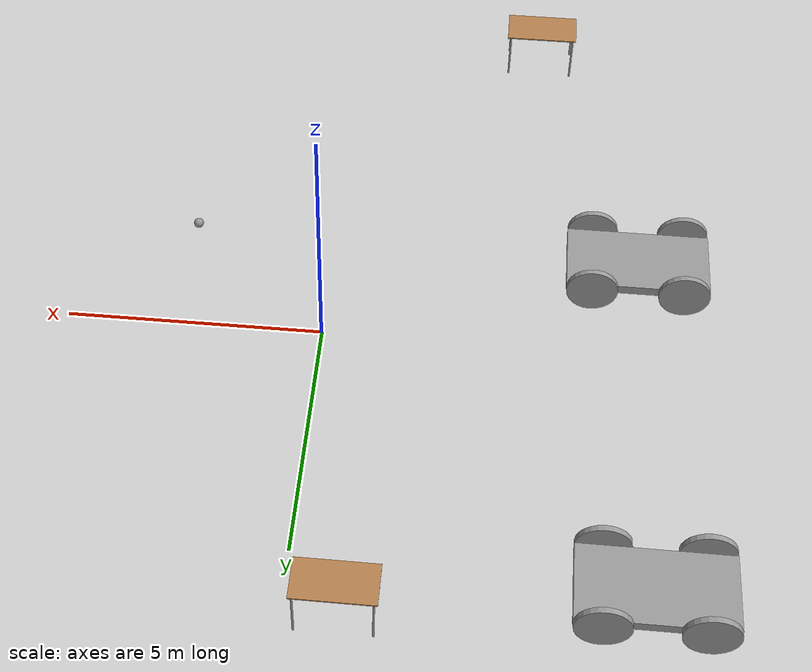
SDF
<sdf version="1.6">
 <world name="default">
  <model name="ground_plane">
   <static>1</static>
   <link name="link">
    <collision name="collision">
     <geometry><plane><normal>0 0 1</normal><size>100 100</size></plane></geometry>
     <surface><friction><ode><mu>100</mu><mu2>50</mu2></ode></friction></surface>
    </collision>
    <visual name="visual">
     <cast_shadows>0</cast_shadows>
     <geometry><plane><normal>0 0 1</normal><size>100 100</size></plane></geometry>
     <material>
      <script><uri>file://media/materials/scripts/gazebo.material</uri><name>Gazebo/Grey</name></script>
     </material>
    </visual>
   </link>
  </model>
  <model name="table">
   <static>1</static>
   <link name="link">
    <collision name="surface">
     <pose>0 0 1 0 -0 0</pose>
     <geometry><box><size>1.5 0.8 0.03</size></box></geometry>
     <surface><friction><ode><mu>0.6</mu><mu2>0.6</mu2></ode></friction></surface>
    </collision>
    <visual name="visual1">
     <pose>0 0 1 0 -0 0</pose>
     <geometry><box><size>1.5 0.8 0.03</size></box></geometry>
     <material>
      <script><uri>file://media/materials/scripts/gazebo.material</uri><name>Gazebo/Wood</name></script>
     </material>
    </visual>
    <collision name="front_left_leg">
     <pose>0.68 0.38 0.5 0 -0 0</pose>
     <geometry><cylinder><radius>0.02</radius><length>1</length></cylinder></geometry>
    </collision>
    <visual name="front_left_leg">
     <pose>0.68 0.38 0.5 0 -0 0</pose>
     <geometry><cylinder><radius>0.02</radius><length>1</length></cylinder></geometry>
     <material>
      <script><uri>file://media/materials/scripts/gazebo.material</uri><name>Gazebo/Grey</name></script>
     </material>
    </visual>
    <collision name="front_right_leg">
     <pose>0.68 -0.38 0.5 0 -0 0</pose>
     <geometry><cylinder><radius>0.02</radius><length>1</length></cylinder></geometry>
    </collision>
    <visual name="front_right_leg">
     <pose>0.68 -0.38 0.5 0 -0 0</pose>
     <geometry><cylinder><radius>0.02</radius><length>1</length></cylinder></geometry>
     <material>
      <script><uri>file://media/materials/scripts/gazebo.material</uri><name>Gazebo/Grey</name></script>
     </material>
    </visual>
    <collision name="back_right_leg">
     <pose>-0.68 -0.38 0.5 0 -0 0</pose>
     <geometry><cylinder><radius>0.02</radius><length>1</length></cylinder></geometry>
    </collision>
    <visual name="back_right_leg">
     <pose>-0.68 -0.38 0.5 0 -0 0</pose>
     <geometry><cylinder><radius>0.02</radius><length>1</length></cylinder></geometry>
     <material>
      <script><uri>file://media/materials/scripts/gazebo.material</uri><name>Gazebo/Grey</name></script>
     </material>
    </visual>
    <collision name="back_left_leg">
     <pose>-0.68 0.38 0.5 0 -0 0</pose>
     <geometry><cylinder><radius>0.02</radius><length>1</length></cylinder></geometry>
    </collision>
    <visual name="back_left_leg">
     <pose>-0.68 0.38 0.5 0 -0 0</pose>
     <geometry><cylinder><radius>0.02</radius><length>1</length></cylinder></geometry>
     <material>
      <script><uri>file://media/materials/scripts/gazebo.material</uri><name>Gazebo/Grey</name></script>
     </material>
    </visual>
   </link>
   <pose>-0.947765 6.15557 0 0 -0 0</pose>
  </model>
  <model name="table_2">
   <static>1</static>
   <link name="link">
    <collision name="surface">
     <pose>0 0 1 0 -0 0</pose>
     <geometry><box><size>1.5 0.8 0.03</size></box></geometry>
     <surface><friction><ode><mu>0.6</mu><mu2>0.6</mu2></ode></friction></surface>
    </collision>
    <visual name="visual1">
     <pose>0 0 1 0 -0 0</pose>
     <geometry><box><size>1.5 0.8 0.03</size></box></geometry>
     <material>
      <script><uri>file://media/materials/scripts/gazebo.material</uri><name>Gazebo/Wood</name></script>
     </material>
    </visual>
    <collision name="front_left_leg">
     <pose>0.68 0.38 0.5 0 -0 0</pose>
     <geometry><cylinder><radius>0.02</radius><length>1</length></cylinder></geometry>
    </collision>
    <visual name="front_left_leg">
     <pose>0.68 0.38 0.5 0 -0 0</pose>
     <geometry><cylinder><radius>0.02</radius><length>1</length></cylinder></geometry>
     <material>
      <script><uri>file://media/materials/scripts/gazebo.material</uri><name>Gazebo/Grey</name></script>
     </material>
    </visual>
    <collision name="front_right_leg">
     <pose>0.68 -0.38 0.5 0 -0 0</pose>
     <geometry><cylinder><radius>0.02</radius><length>1</length></cylinder></geometry>
    </collision>
    <visual name="front_right_leg">
     <pose>0.68 -0.38 0.5 0 -0 0</pose>
     <geometry><cylinder><radius>0.02</radius><length>1</length></cylinder></geometry>
     <material>
      <script><uri>file://media/materials/scripts/gazebo.material</uri><name>Gazebo/Grey</name></script>
     </material>
    </visual>
    <collision name="back_right_leg">
     <pose>-0.68 -0.38 0.5 0 -0 0</pose>
     <geometry><cylinder><radius>0.02</radius><length>1</length></cylinder></geometry>
    </collision>
    <visual name="back_right_leg">
     <pose>-0.68 -0.38 0.5 0 -0 0</pose>
     <geometry><cylinder><radius>0.02</radius><length>1</length></cylinder></geometry>
     <material>
      <script><uri>file://media/materials/scripts/gazebo.material</uri><name>Gazebo/Grey</name></script>
     </material>
    </visual>
    <collision name="back_left_leg">
     <pose>-0.68 0.38 0.5 0 -0 0</pose>
     <geometry><cylinder><radius>0.02</radius><length>1</length></cylinder></geometry>
    </collision>
    <visual name="back_left_leg">
     <pose>-0.68 0.38 0.5 0 -0 0</pose>
     <geometry><cylinder><radius>0.02</radius><length>1</length></cylinder></geometry>
     <material>
      <script><uri>file://media/materials/scripts/gazebo.material</uri><name>Gazebo/Grey</name></script>
     </material>
    </visual>
   </link>
   <pose>-3.98995 -8.47046 0 0 -0 0</pose>
  </model>
  <model name="robot">
   <link name="link_0">
    <pose>-1e-06 -2e-06 -0.017894 0 -0 0</pose>
    <inertial>
     <mass>0.791661</mass>
     <inertia>
      <ixx>0.14552</ixx>
      <ixy>0</ixy>
      <ixz>0</ixz>
      <iyy>0.516326</iyy>
      <iyz>0</iyz>
      <izz>0.656947</izz>
     </inertia>
    </inertial>
    <visual name="visual">
     <geometry><box><size>2.79094 1.47264 0.192699</size></box></geometry>
     <material>
      <lighting>1</lighting>
      <script><uri>file://media/materials/scripts/gazebo.material</uri><name>Gazebo/Grey</name></script>
      <shader type="pixel"/>
      <ambient>0.3 0.3 0.3 1</ambient>
      <diffuse>0.7 0.7 0.7 1</diffuse>
      <specular>0.01 0.01 0.01 1</specular>
      <emissive>0 0 0 1</emissive>
     </material>
    </visual>
    <collision name="collision">
     <geometry><box><size>2.79094 1.47264 0.192699</size></box></geometry>
     <surface>
      <friction>
       <ode><mu>1</mu><mu2>1</mu2><fdir1>0 0 0</fdir1><slip1>0</slip1><slip2>0</slip2></ode>
       <torsional>
        <coefficient>1</coefficient>
        <patch_radius>0</patch_radius>
        <surface_radius>0</surface_radius>
        <use_patch_radius>1</use_patch_radius>
        <ode><slip>0</slip></ode>
       </torsional>
      </friction>
      <bounce><restitution_coefficient>0</restitution_coefficient><threshold>1e+06</threshold></bounce>
      <contact>
       <collide_without_contact>0</collide_without_contact>
       <collide_without_contact_bitmask>1</collide_without_contact_bitmask>
       <collide_bitmask>1</collide_bitmask>
       <ode>
        <soft_cfm>0</soft_cfm>
        <soft_erp>0.2</soft_erp>
        <kp>1e+13</kp>
        <kd>1</kd>
        <max_vel>0.01</max_vel>
        <min_depth>0</min_depth>
       </ode>
       <bullet>
        <split_impulse>1</split_impulse>
        <split_impulse_penetration_threshold>-0.01</split_impulse_penetration_threshold>
        <soft_cfm>0</soft_cfm>
        <soft_erp>0.2</soft_erp>
        <kp>1e+13</kp>
        <kd>1</kd>
       </bullet>
      </contact>
     </surface>
    </collision>
   </link>
   <link name="link_1">
    <pose>0.895468 -0.796371 0.004474 1.58338 -0 0</pose>
    <inertial>
     <mass>0.107521</mass>
     <inertia>
      <ixx>0.00682364</ixx>
      <ixy>0</ixy>
      <ixz>0</ixz>
      <iyy>0.00682364</iyy>
      <iyz>0</iyz>
      <izz>0.0134401</izz>
     </inertia>
    </inertial>
    <visual name="visual">
     <geometry><cylinder><radius>0.5</radius><length>0.107521</length></cylinder></geometry>
     <material>
      <lighting>1</lighting>
      <script><uri>file://media/materials/scripts/gazebo.material</uri><name>Gazebo/Grey</name></script>
      <shader type="pixel"><normal_map>__default__</normal_map></shader>
      <ambient>0.3 0.3 0.3 1</ambient>
      <diffuse>0.7 0.7 0.7 1</diffuse>
      <specular>0.01 0.01 0.01 1</specular>
      <emissive>0 0 0 1</emissive>
     </material>
    </visual>
    <collision name="collision">
     <geometry><cylinder><radius>0.5</radius><length>0.107521</length></cylinder></geometry>
     <surface>
      <friction>
       <ode><mu>1</mu><mu2>1</mu2><fdir1>0 0 0</fdir1><slip1>0</slip1><slip2>0</slip2></ode>
       <torsional>
        <coefficient>1</coefficient>
        <patch_radius>0</patch_radius>
        <surface_radius>0</surface_radius>
        <use_patch_radius>1</use_patch_radius>
        <ode><slip>0</slip></ode>
       </torsional>
      </friction>
      <bounce><restitution_coefficient>0</restitution_coefficient><threshold>1e+06</threshold></bounce>
      <contact>
       <collide_without_contact>0</collide_without_contact>
       <collide_without_contact_bitmask>1</collide_without_contact_bitmask>
       <collide_bitmask>1</collide_bitmask>
       <ode>
        <soft_cfm>0</soft_cfm>
        <soft_erp>0.2</soft_erp>
        <kp>1e+13</kp>
        <kd>1</kd>
        <max_vel>0.01</max_vel>
        <min_depth>0</min_depth>
       </ode>
       <bullet>
        <split_impulse>1</split_impulse>
        <split_impulse_penetration_threshold>-0.01</split_impulse_penetration_threshold>
        <soft_cfm>0</soft_cfm>
        <soft_erp>0.2</soft_erp>
        <kp>1e+13</kp>
        <kd>1</kd>
       </bullet>
      </contact>
     </surface>
    </collision>
   </link>
   <link name="link_1_clone">
    <pose>0.895468 0.796367 0.004474 1.58338 -0 0</pose>
    <inertial>
     <mass>0.107521</mass>
     <inertia>
      <ixx>0.00682364</ixx>
      <ixy>0</ixy>
      <ixz>0</ixz>
      <iyy>0.00682364</iyy>
      <iyz>0</iyz>
      <izz>0.0134401</izz>
     </inertia>
    </inertial>
    <visual name="visual">
     <geometry><cylinder><radius>0.5</radius><length>0.107521</length></cylinder></geometry>
     <material>
      <lighting>1</lighting>
      <script><uri>file://media/materials/scripts/gazebo.material</uri><name>Gazebo/Grey</name></script>
      <shader type="pixel"><normal_map>__default__</normal_map></shader>
      <ambient>0.3 0.3 0.3 1</ambient>
      <diffuse>0.7 0.7 0.7 1</diffuse>
      <specular>0.01 0.01 0.01 1</specular>
      <emissive>0 0 0 1</emissive>
     </material>
    </visual>
    <collision name="collision">
     <geometry><cylinder><radius>0.5</radius><length>0.107521</length></cylinder></geometry>
     <surface>
      <friction>
       <ode><mu>1</mu><mu2>1</mu2><fdir1>0 0 0</fdir1><slip1>0</slip1><slip2>0</slip2></ode>
       <torsional>
        <coefficient>1</coefficient>
        <patch_radius>0</patch_radius>
        <surface_radius>0</surface_radius>
        <use_patch_radius>1</use_patch_radius>
        <ode><slip>0</slip></ode>
       </torsional>
      </friction>
      <bounce><restitution_coefficient>0</restitution_coefficient><threshold>1e+06</threshold></bounce>
      <contact>
       <collide_without_contact>0</collide_without_contact>
       <collide_without_contact_bitmask>1</collide_without_contact_bitmask>
       <collide_bitmask>1</collide_bitmask>
       <ode>
        <soft_cfm>0</soft_cfm>
        <soft_erp>0.2</soft_erp>
        <kp>1e+13</kp>
        <kd>1</kd>
        <max_vel>0.01</max_vel>
        <min_depth>0</min_depth>
       </ode>
       <bullet>
        <split_impulse>1</split_impulse>
        <split_impulse_penetration_threshold>-0.01</split_impulse_penetration_threshold>
        <soft_cfm>0</soft_cfm>
        <soft_erp>0.2</soft_erp>
        <kp>1e+13</kp>
        <kd>1</kd>
       </bullet>
      </contact>
     </surface>
    </collision>
   </link>
   <link name="link_1_clone_clone">
    <pose>-0.895471 -0.796371 0.004474 1.58338 -0 0</pose>
    <inertial>
     <mass>0.107521</mass>
     <inertia>
      <ixx>0.00682364</ixx>
      <ixy>0</ixy>
      <ixz>0</ixz>
      <iyy>0.00682364</iyy>
      <iyz>0</iyz>
      <izz>0.0134401</izz>
     </inertia>
    </inertial>
    <visual name="visual">
     <geometry><cylinder><radius>0.5</radius><length>0.107521</length></cylinder></geometry>
     <material>
      <lighting>1</lighting>
      <script><uri>file://media/materials/scripts/gazebo.material</uri><name>Gazebo/Grey</name></script>
      <shader type="pixel"><normal_map>__default__</normal_map></shader>
      <ambient>0.3 0.3 0.3 1</ambient>
      <diffuse>0.7 0.7 0.7 1</diffuse>
      <specular>0.01 0.01 0.01 1</specular>
      <emissive>0 0 0 1</emissive>
     </material>
    </visual>
    <collision name="collision">
     <geometry><cylinder><radius>0.5</radius><length>0.107521</length></cylinder></geometry>
     <surface>
      <friction>
       <ode><mu>1</mu><mu2>1</mu2><fdir1>0 0 0</fdir1><slip1>0</slip1><slip2>0</slip2></ode>
       <torsional>
        <coefficient>1</coefficient>
        <patch_radius>0</patch_radius>
        <surface_radius>0</surface_radius>
        <use_patch_radius>1</use_patch_radius>
        <ode><slip>0</slip></ode>
       </torsional>
      </friction>
      <bounce><restitution_coefficient>0</restitution_coefficient><threshold>1e+06</threshold></bounce>
      <contact>
       <collide_without_contact>0</collide_without_contact>
       <collide_without_contact_bitmask>1</collide_without_contact_bitmask>
       <collide_bitmask>1</collide_bitmask>
       <ode>
        <soft_cfm>0</soft_cfm>
        <soft_erp>0.2</soft_erp>
        <kp>1e+13</kp>
        <kd>1</kd>
        <max_vel>0.01</max_vel>
        <min_depth>0</min_depth>
       </ode>
       <bullet>
        <split_impulse>1</split_impulse>
        <split_impulse_penetration_threshold>-0.01</split_impulse_penetration_threshold>
        <soft_cfm>0</soft_cfm>
        <soft_erp>0.2</soft_erp>
        <kp>1e+13</kp>
        <kd>1</kd>
       </bullet>
      </contact>
     </surface>
    </collision>
   </link>
   <link name="link_1_clone_clone_clone">
    <pose>-0.895471 0.796367 0.004474 1.58338 -0 0</pose>
    <inertial>
     <mass>0.107521</mass>
     <inertia>
      <ixx>0.00682364</ixx>
      <ixy>0</ixy>
      <ixz>0</ixz>
      <iyy>0.00682364</iyy>
      <iyz>0</iyz>
      <izz>0.0134401</izz>
     </inertia>
    </inertial>
    <visual name="visual">
     <geometry><cylinder><radius>0.5</radius><length>0.107521</length></cylinder></geometry>
     <material>
      <lighting>1</lighting>
      <script><uri>file://media/materials/scripts/gazebo.material</uri><name>Gazebo/Grey</name></script>
      <shader type="pixel"><normal_map>__default__</normal_map></shader>
      <ambient>0.3 0.3 0.3 1</ambient>
      <diffuse>0.7 0.7 0.7 1</diffuse>
      <specular>0.01 0.01 0.01 1</specular>
      <emissive>0 0 0 1</emissive>
     </material>
    </visual>
    <collision name="collision">
     <geometry><cylinder><radius>0.5</radius><length>0.107521</length></cylinder></geometry>
     <surface>
      <friction>
       <ode><mu>1</mu><mu2>1</mu2><fdir1>0 0 0</fdir1><slip1>0</slip1><slip2>0</slip2></ode>
       <torsional>
        <coefficient>1</coefficient>
        <patch_radius>0</patch_radius>
        <surface_radius>0</surface_radius>
        <use_patch_radius>1</use_patch_radius>
        <ode><slip>0</slip></ode>
       </torsional>
      </friction>
      <bounce><restitution_coefficient>0</restitution_coefficient><threshold>1e+06</threshold></bounce>
      <contact>
       <collide_without_contact>0</collide_without_contact>
       <collide_without_contact_bitmask>1</collide_without_contact_bitmask>
       <collide_bitmask>1</collide_bitmask>
       <ode>
        <soft_cfm>0</soft_cfm>
        <soft_erp>0.2</soft_erp>
        <kp>1e+13</kp>
        <kd>1</kd>
        <max_vel>0.01</max_vel>
        <min_depth>0</min_depth>
       </ode>
       <bullet>
        <split_impulse>1</split_impulse>
        <split_impulse_penetration_threshold>-0.01</split_impulse_penetration_threshold>
        <soft_cfm>0</soft_cfm>
        <soft_erp>0.2</soft_erp>
        <kp>1e+13</kp>
        <kd>1</kd>
       </bullet>
      </contact>
     </surface>
    </collision>
   </link>
   <joint name="link_0_JOINT_0" type="revolute">
    <parent>link_0</parent>
    <child>link_1</child>
    <axis>
     <xyz>1 0 0</xyz>
     <use_parent_model_frame>0</use_parent_model_frame>
     <limit>
      <lower>-1.79769e+308</lower>
      <upper>1.79769e+308</upper>
      <effort>-1</effort>
      <velocity>-1</velocity>
     </limit>
     <dynamics>
      <spring_reference>0</spring_reference>
      <spring_stiffness>0</spring_stiffness>
      <damping>0</damping>
     </dynamics>
    </axis>
    <physics>
     <ode><limit><cfm>0</cfm><erp>0.2</erp></limit><suspension><cfm>0</cfm><erp>0.2</erp></suspension></ode>
    </physics>
   </joint>
   <joint name="link_0_JOINT_1" type="revolute">
    <parent>link_0</parent>
    <child>link_1_clone</child>
    <axis>
     <xyz>1 0 0</xyz>
     <use_parent_model_frame>0</use_parent_model_frame>
     <limit>
      <lower>-1.79769e+308</lower>
      <upper>1.79769e+308</upper>
      <effort>-1</effort>
      <velocity>-1</velocity>
     </limit>
     <dynamics>
      <spring_reference>0</spring_reference>
      <spring_stiffness>0</spring_stiffness>
      <damping>0</damping>
     </dynamics>
    </axis>
    <physics>
     <ode><limit><cfm>0</cfm><erp>0.2</erp></limit><suspension><cfm>0</cfm><erp>0.2</erp></suspension></ode>
    </physics>
   </joint>
   <joint name="link_0_JOINT_2" type="revolute">
    <parent>link_0</parent>
    <child>link_1_clone_clone</child>
    <axis>
     <xyz>1 0 0</xyz>
     <use_parent_model_frame>0</use_parent_model_frame>
     <limit>
      <lower>-1.79769e+308</lower>
      <upper>1.79769e+308</upper>
      <effort>-1</effort>
      <velocity>-1</velocity>
     </limit>
     <dynamics>
      <spring_reference>0</spring_reference>
      <spring_stiffness>0</spring_stiffness>
      <damping>0</damping>
     </dynamics>
    </axis>
    <physics>
     <ode><limit><cfm>0</cfm><erp>0.2</erp></limit><suspension><cfm>0</cfm><erp>0.2</erp></suspension></ode>
    </physics>
   </joint>
   <joint name="link_0_JOINT_3" type="revolute">
    <parent>link_0</parent>
    <child>link_1_clone_clone_clone</child>
    <axis>
     <xyz>1 0 0</xyz>
     <use_parent_model_frame>0</use_parent_model_frame>
     <limit>
      <lower>-1.79769e+308</lower>
      <upper>1.79769e+308</upper>
      <effort>-1</effort>
      <velocity>-1</velocity>
     </limit>
     <dynamics>
      <spring_reference>0</spring_reference>
      <spring_stiffness>0</spring_stiffness>
      <damping>0</damping>
     </dynamics>
    </axis>
    <physics>
     <ode><limit><cfm>0</cfm><erp>0.2</erp></limit><suspension><cfm>0</cfm><erp>0.2</erp></suspension></ode>
    </physics>
   </joint>
   <static>0</static>
   <pose>-6.30392 5.46853 0.495524 -0 -2e-06 3.3e-05</pose>
  </model>
  <model name="robot_0">
   <link name="link_0">
    <pose>-1e-06 -2e-06 -0.017894 0 -0 0</pose>
    <inertial>
     <mass>0.791661</mass>
     <inertia>
      <ixx>0.14552</ixx>
      <ixy>0</ixy>
      <ixz>0</ixz>
      <iyy>0.516326</iyy>
      <iyz>0</iyz>
      <izz>0.656947</izz>
     </inertia>
    </inertial>
    <visual name="visual">
     <geometry><box><size>2.79094 1.47264 0.192699</size></box></geometry>
     <material>
      <lighting>1</lighting>
      <script><uri>file://media/materials/scripts/gazebo.material</uri><name>Gazebo/Grey</name></script>
      <shader type="pixel"/>
      <ambient>0.3 0.3 0.3 1</ambient>
      <diffuse>0.7 0.7 0.7 1</diffuse>
      <specular>0.01 0.01 0.01 1</specular>
      <emissive>0 0 0 1</emissive>
     </material>
    </visual>
    <collision name="collision">
     <geometry><box><size>2.79094 1.47264 0.192699</size></box></geometry>
     <surface>
      <friction>
       <ode><mu>1</mu><mu2>1</mu2><fdir1>0 0 0</fdir1><slip1>0</slip1><slip2>0</slip2></ode>
       <torsional>
        <coefficient>1</coefficient>
        <patch_radius>0</patch_radius>
        <surface_radius>0</surface_radius>
        <use_patch_radius>1</use_patch_radius>
        <ode><slip>0</slip></ode>
       </torsional>
      </friction>
      <bounce><restitution_coefficient>0</restitution_coefficient><threshold>1e+06</threshold></bounce>
      <contact>
       <collide_without_contact>0</collide_without_contact>
       <collide_without_contact_bitmask>1</collide_without_contact_bitmask>
       <collide_bitmask>1</collide_bitmask>
       <ode>
        <soft_cfm>0</soft_cfm>
        <soft_erp>0.2</soft_erp>
        <kp>1e+13</kp>
        <kd>1</kd>
        <max_vel>0.01</max_vel>
        <min_depth>0</min_depth>
       </ode>
       <bullet>
        <split_impulse>1</split_impulse>
        <split_impulse_penetration_threshold>-0.01</split_impulse_penetration_threshold>
        <soft_cfm>0</soft_cfm>
        <soft_erp>0.2</soft_erp>
        <kp>1e+13</kp>
        <kd>1</kd>
       </bullet>
      </contact>
     </surface>
    </collision>
   </link>
   <link name="link_1">
    <pose>0.895468 -0.796371 0.004474 1.58338 -0 0</pose>
    <inertial>
     <mass>0.107521</mass>
     <inertia>
      <ixx>0.00682364</ixx>
      <ixy>0</ixy>
      <ixz>0</ixz>
      <iyy>0.00682364</iyy>
      <iyz>0</iyz>
      <izz>0.0134401</izz>
     </inertia>
    </inertial>
    <visual name="visual">
     <geometry><cylinder><radius>0.5</radius><length>0.107521</length></cylinder></geometry>
     <material>
      <lighting>1</lighting>
      <script><uri>file://media/materials/scripts/gazebo.material</uri><name>Gazebo/Grey</name></script>
      <shader type="pixel"><normal_map>__default__</normal_map></shader>
      <ambient>0.3 0.3 0.3 1</ambient>
      <diffuse>0.7 0.7 0.7 1</diffuse>
      <specular>0.01 0.01 0.01 1</specular>
      <emissive>0 0 0 1</emissive>
     </material>
    </visual>
    <collision name="collision">
     <geometry><cylinder><radius>0.5</radius><length>0.107521</length></cylinder></geometry>
     <surface>
      <friction>
       <ode><mu>1</mu><mu2>1</mu2><fdir1>0 0 0</fdir1><slip1>0</slip1><slip2>0</slip2></ode>
       <torsional>
        <coefficient>1</coefficient>
        <patch_radius>0</patch_radius>
        <surface_radius>0</surface_radius>
        <use_patch_radius>1</use_patch_radius>
        <ode><slip>0</slip></ode>
       </torsional>
      </friction>
      <bounce><restitution_coefficient>0</restitution_coefficient><threshold>1e+06</threshold></bounce>
      <contact>
       <collide_without_contact>0</collide_without_contact>
       <collide_without_contact_bitmask>1</collide_without_contact_bitmask>
       <collide_bitmask>1</collide_bitmask>
       <ode>
        <soft_cfm>0</soft_cfm>
        <soft_erp>0.2</soft_erp>
        <kp>1e+13</kp>
        <kd>1</kd>
        <max_vel>0.01</max_vel>
        <min_depth>0</min_depth>
       </ode>
       <bullet>
        <split_impulse>1</split_impulse>
        <split_impulse_penetration_threshold>-0.01</split_impulse_penetration_threshold>
        <soft_cfm>0</soft_cfm>
        <soft_erp>0.2</soft_erp>
        <kp>1e+13</kp>
        <kd>1</kd>
       </bullet>
      </contact>
     </surface>
    </collision>
   </link>
   <link name="link_1_clone">
    <pose>0.895468 0.796367 0.004474 1.58338 -0 0</pose>
    <inertial>
     <mass>0.107521</mass>
     <inertia>
      <ixx>0.00682364</ixx>
      <ixy>0</ixy>
      <ixz>0</ixz>
      <iyy>0.00682364</iyy>
      <iyz>0</iyz>
      <izz>0.0134401</izz>
     </inertia>
    </inertial>
    <visual name="visual">
     <geometry><cylinder><radius>0.5</radius><length>0.107521</length></cylinder></geometry>
     <material>
      <lighting>1</lighting>
      <script><uri>file://media/materials/scripts/gazebo.material</uri><name>Gazebo/Grey</name></script>
      <shader type="pixel"><normal_map>__default__</normal_map></shader>
      <ambient>0.3 0.3 0.3 1</ambient>
      <diffuse>0.7 0.7 0.7 1</diffuse>
      <specular>0.01 0.01 0.01 1</specular>
      <emissive>0 0 0 1</emissive>
     </material>
    </visual>
    <collision name="collision">
     <geometry><cylinder><radius>0.5</radius><length>0.107521</length></cylinder></geometry>
     <surface>
      <friction>
       <ode><mu>1</mu><mu2>1</mu2><fdir1>0 0 0</fdir1><slip1>0</slip1><slip2>0</slip2></ode>
       <torsional>
        <coefficient>1</coefficient>
        <patch_radius>0</patch_radius>
        <surface_radius>0</surface_radius>
        <use_patch_radius>1</use_patch_radius>
        <ode><slip>0</slip></ode>
       </torsional>
      </friction>
      <bounce><restitution_coefficient>0</restitution_coefficient><threshold>1e+06</threshold></bounce>
      <contact>
       <collide_without_contact>0</collide_without_contact>
       <collide_without_contact_bitmask>1</collide_without_contact_bitmask>
       <collide_bitmask>1</collide_bitmask>
       <ode>
        <soft_cfm>0</soft_cfm>
        <soft_erp>0.2</soft_erp>
        <kp>1e+13</kp>
        <kd>1</kd>
        <max_vel>0.01</max_vel>
        <min_depth>0</min_depth>
       </ode>
       <bullet>
        <split_impulse>1</split_impulse>
        <split_impulse_penetration_threshold>-0.01</split_impulse_penetration_threshold>
        <soft_cfm>0</soft_cfm>
        <soft_erp>0.2</soft_erp>
        <kp>1e+13</kp>
        <kd>1</kd>
       </bullet>
      </contact>
     </surface>
    </collision>
   </link>
   <link name="link_1_clone_clone">
    <pose>-0.895471 -0.796371 0.004474 1.58338 -0 0</pose>
    <inertial>
     <mass>0.107521</mass>
     <inertia>
      <ixx>0.00682364</ixx>
      <ixy>0</ixy>
      <ixz>0</ixz>
      <iyy>0.00682364</iyy>
      <iyz>0</iyz>
      <izz>0.0134401</izz>
     </inertia>
    </inertial>
    <visual name="visual">
     <geometry><cylinder><radius>0.5</radius><length>0.107521</length></cylinder></geometry>
     <material>
      <lighting>1</lighting>
      <script><uri>file://media/materials/scripts/gazebo.material</uri><name>Gazebo/Grey</name></script>
      <shader type="pixel"><normal_map>__default__</normal_map></shader>
      <ambient>0.3 0.3 0.3 1</ambient>
      <diffuse>0.7 0.7 0.7 1</diffuse>
      <specular>0.01 0.01 0.01 1</specular>
      <emissive>0 0 0 1</emissive>
     </material>
    </visual>
    <collision name="collision">
     <geometry><cylinder><radius>0.5</radius><length>0.107521</length></cylinder></geometry>
     <surface>
      <friction>
       <ode><mu>1</mu><mu2>1</mu2><fdir1>0 0 0</fdir1><slip1>0</slip1><slip2>0</slip2></ode>
       <torsional>
        <coefficient>1</coefficient>
        <patch_radius>0</patch_radius>
        <surface_radius>0</surface_radius>
        <use_patch_radius>1</use_patch_radius>
        <ode><slip>0</slip></ode>
       </torsional>
      </friction>
      <bounce><restitution_coefficient>0</restitution_coefficient><threshold>1e+06</threshold></bounce>
      <contact>
       <collide_without_contact>0</collide_without_contact>
       <collide_without_contact_bitmask>1</collide_without_contact_bitmask>
       <collide_bitmask>1</collide_bitmask>
       <ode>
        <soft_cfm>0</soft_cfm>
        <soft_erp>0.2</soft_erp>
        <kp>1e+13</kp>
        <kd>1</kd>
        <max_vel>0.01</max_vel>
        <min_depth>0</min_depth>
       </ode>
       <bullet>
        <split_impulse>1</split_impulse>
        <split_impulse_penetration_threshold>-0.01</split_impulse_penetration_threshold>
        <soft_cfm>0</soft_cfm>
        <soft_erp>0.2</soft_erp>
        <kp>1e+13</kp>
        <kd>1</kd>
       </bullet>
      </contact>
     </surface>
    </collision>
   </link>
   <link name="link_1_clone_clone_clone">
    <pose>-0.895471 0.796367 0.004474 1.58338 -0 0</pose>
    <inertial>
     <mass>0.107521</mass>
     <inertia>
      <ixx>0.00682364</ixx>
      <ixy>0</ixy>
      <ixz>0</ixz>
      <iyy>0.00682364</iyy>
      <iyz>0</iyz>
      <izz>0.0134401</izz>
     </inertia>
    </inertial>
    <visual name="visual">
     <geometry><cylinder><radius>0.5</radius><length>0.107521</length></cylinder></geometry>
     <material>
      <lighting>1</lighting>
      <script><uri>file://media/materials/scripts/gazebo.material</uri><name>Gazebo/Grey</name></script>
      <shader type="pixel"><normal_map>__default__</normal_map></shader>
      <ambient>0.3 0.3 0.3 1</ambient>
      <diffuse>0.7 0.7 0.7 1</diffuse>
      <specular>0.01 0.01 0.01 1</specular>
      <emissive>0 0 0 1</emissive>
     </material>
    </visual>
    <collision name="collision">
     <geometry><cylinder><radius>0.5</radius><length>0.107521</length></cylinder></geometry>
     <surface>
      <friction>
       <ode><mu>1</mu><mu2>1</mu2><fdir1>0 0 0</fdir1><slip1>0</slip1><slip2>0</slip2></ode>
       <torsional>
        <coefficient>1</coefficient>
        <patch_radius>0</patch_radius>
        <surface_radius>0</surface_radius>
        <use_patch_radius>1</use_patch_radius>
        <ode><slip>0</slip></ode>
       </torsional>
      </friction>
      <bounce><restitution_coefficient>0</restitution_coefficient><threshold>1e+06</threshold></bounce>
      <contact>
       <collide_without_contact>0</collide_without_contact>
       <collide_without_contact_bitmask>1</collide_without_contact_bitmask>
       <collide_bitmask>1</collide_bitmask>
       <ode>
        <soft_cfm>0</soft_cfm>
        <soft_erp>0.2</soft_erp>
        <kp>1e+13</kp>
        <kd>1</kd>
        <max_vel>0.01</max_vel>
        <min_depth>0</min_depth>
       </ode>
       <bullet>
        <split_impulse>1</split_impulse>
        <split_impulse_penetration_threshold>-0.01</split_impulse_penetration_threshold>
        <soft_cfm>0</soft_cfm>
        <soft_erp>0.2</soft_erp>
        <kp>1e+13</kp>
        <kd>1</kd>
       </bullet>
      </contact>
     </surface>
    </collision>
   </link>
   <joint name="link_0_JOINT_0" type="revolute">
    <parent>link_0</parent>
    <child>link_1</child>
    <axis>
     <xyz>1 0 0</xyz>
     <use_parent_model_frame>0</use_parent_model_frame>
     <limit>
      <lower>-1.79769e+308</lower>
      <upper>1.79769e+308</upper>
      <effort>-1</effort>
      <velocity>-1</velocity>
     </limit>
     <dynamics>
      <spring_reference>0</spring_reference>
      <spring_stiffness>0</spring_stiffness>
      <damping>0</damping>
     </dynamics>
    </axis>
    <physics>
     <ode><limit><cfm>0</cfm><erp>0.2</erp></limit><suspension><cfm>0</cfm><erp>0.2</erp></suspension></ode>
    </physics>
   </joint>
   <joint name="link_0_JOINT_1" type="revolute">
    <parent>link_0</parent>
    <child>link_1_clone</child>
    <axis>
     <xyz>1 0 0</xyz>
     <use_parent_model_frame>0</use_parent_model_frame>
     <limit>
      <lower>-1.79769e+308</lower>
      <upper>1.79769e+308</upper>
      <effort>-1</effort>
      <velocity>-1</velocity>
     </limit>
     <dynamics>
      <spring_reference>0</spring_reference>
      <spring_stiffness>0</spring_stiffness>
      <damping>0</damping>
     </dynamics>
    </axis>
    <physics>
     <ode><limit><cfm>0</cfm><erp>0.2</erp></limit><suspension><cfm>0</cfm><erp>0.2</erp></suspension></ode>
    </physics>
   </joint>
   <joint name="link_0_JOINT_2" type="revolute">
    <parent>link_0</parent>
    <child>link_1_clone_clone</child>
    <axis>
     <xyz>1 0 0</xyz>
     <use_parent_model_frame>0</use_parent_model_frame>
     <limit>
      <lower>-1.79769e+308</lower>
      <upper>1.79769e+308</upper>
      <effort>-1</effort>
      <velocity>-1</velocity>
     </limit>
     <dynamics>
      <spring_reference>0</spring_reference>
      <spring_stiffness>0</spring_stiffness>
      <damping>0</damping>
     </dynamics>
    </axis>
    <physics>
     <ode><limit><cfm>0</cfm><erp>0.2</erp></limit><suspension><cfm>0</cfm><erp>0.2</erp></suspension></ode>
    </physics>
   </joint>
   <joint name="link_0_JOINT_3" type="revolute">
    <parent>link_0</parent>
    <child>link_1_clone_clone_clone</child>
    <axis>
     <xyz>1 0 0</xyz>
     <use_parent_model_frame>0</use_parent_model_frame>
     <limit>
      <lower>-1.79769e+308</lower>
      <upper>1.79769e+308</upper>
      <effort>-1</effort>
      <velocity>-1</velocity>
     </limit>
     <dynamics>
      <spring_reference>0</spring_reference>
      <spring_stiffness>0</spring_stiffness>
      <damping>0</damping>
     </dynamics>
    </axis>
    <physics>
     <ode><limit><cfm>0</cfm><erp>0.2</erp></limit><suspension><cfm>0</cfm><erp>0.2</erp></suspension></ode>
    </physics>
   </joint>
   <static>0</static>
   <pose>-6.07852 -1.99737 0.49552 -3e-06 -0 -6.2e-05</pose>
  </model>
  <model name="my_ball">
   <link name="link_0">
    <inertial>
     <mass>1</mass>
     <inertia><ixx>0.1</ixx><ixy>0</ixy><ixz>0</ixz><iyy>0.1</iyy><iyz>0</iyz><izz>0.1</izz></inertia>
    </inertial>
    <visual name="visual">
     <geometry><sphere><radius>0.1</radius></sphere></geometry>
     <material>
      <lighting>1</lighting>
      <script><uri>file://media/materials/scripts/gazebo.material</uri><name>Gazebo/Grey</name></script>
      <shader type="pixel"><normal_map>__default__</normal_map></shader>
      <ambient>1 1 1 1</ambient>
      <diffuse>1 1 1 1</diffuse>
      <specular>1 1 1 1</specular>
      <emissive>1 1 1 1</emissive>
     </material>
    </visual>
    <collision name="collision">
     <geometry><sphere><radius>0.1</radius></sphere></geometry>
     <surface>
      <friction>
       <ode><mu>1</mu><mu2>1</mu2><fdir1>0 0 0</fdir1><slip1>0</slip1><slip2>0</slip2></ode>
       <torsional>
        <coefficient>1</coefficient>
        <patch_radius>0</patch_radius>
        <surface_radius>0</surface_radius>
        <use_patch_radius>1</use_patch_radius>
        <ode><slip>0</slip></ode>
       </torsional>
      </friction>
      <bounce><restitution_coefficient>0</restitution_coefficient><threshold>1e+06</threshold></bounce>
      <contact>
       <collide_without_contact>0</collide_without_contact>
       <collide_without_contact_bitmask>1</collide_without_contact_bitmask>
       <collide_bitmask>1</collide_bitmask>
       <ode>
        <soft_cfm>0</soft_cfm>
        <soft_erp>0.2</soft_erp>
        <kp>1e+13</kp>
        <kd>1</kd>
        <max_vel>0.01</max_vel>
        <min_depth>0</min_depth>
       </ode>
       <bullet>
        <split_impulse>1</split_impulse>
        <split_impulse_penetration_threshold>-0.01</split_impulse_penetration_threshold>
        <soft_cfm>0</soft_cfm>
        <soft_erp>0.2</soft_erp>
        <kp>1e+13</kp>
        <kd>1</kd>
       </bullet>
      </contact>
     </surface>
    </collision>
   </link>
   <static>0</static>
   <pose>2.85342 -2.6185 0.1 0 -0 0</pose>
  </model>
 </world>
</sdf>
